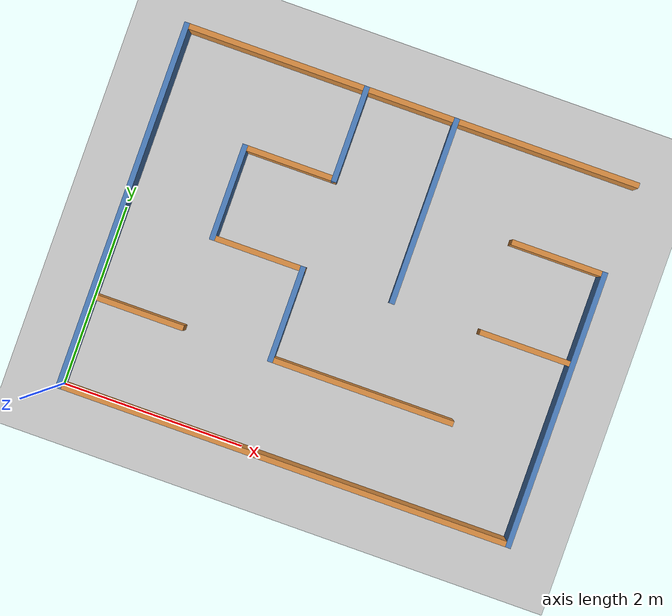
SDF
<?xml version="1.0"?>
<sdf version="1.8">
  <world name="default">
    <physics type="ode">
      <real_time_update_rate>1000.0</real_time_update_rate>
      <max_step_size>0.001</max_step_size>
      <real_time_factor>1</real_time_factor>
      <ode>
        <solver>
          <type>quick</type>
          <iters>150</iters>
          <precon_iters>0</precon_iters>
          <sor>1.400000</sor>
          <use_dynamic_moi_rescaling>1</use_dynamic_moi_rescaling>
        </solver>
        <constraints>
          <cfm>0.00001</cfm>
          <erp>0.2</erp>
          <contact_max_correcting_vel>2000.000000</contact_max_correcting_vel>
          <contact_surface_layer>0.01000</contact_surface_layer>
        </constraints>
      </ode>
    </physics>
    <plugin
      filename="gz-sim-physics-system"
      name="gz::sim::systems::Physics">
    </plugin>
    <plugin
      filename="gz-sim-user-commands-system"
      name="gz::sim::systems::UserCommands">
    </plugin>
    <plugin
      filename="gz-sim-scene-broadcaster-system"
      name="gz::sim::systems::SceneBroadcaster">
    </plugin>
    <plugin
      filename="gz-sim-sensors-system"
      name="gz::sim::systems::Sensors">
      <render_engine>ogre2</render_engine>
    </plugin>
    <plugin
      filename="gz-sim-imu-system"
      name="gz::sim::systems::Imu">
    </plugin>

    <scene>
      <shadows>false</shadows>
    </scene>

    <gui fullscreen='0'>
      <camera name='user_camera'>
        <pose frame=''>2.07 2.00 7.5 0 1.5138 0</pose>
        <view_controller>orbit</view_controller>
        <projection_type>perspective</projection_type>
      </camera>
    </gui>

    <light type="directional" name="sun">
      <cast_shadows>false</cast_shadows>
      <pose>0 0 10 0 0 0</pose>
      <diffuse>0.8 0.8 0.8 1</diffuse>
      <specular>0.2 0.2 0.2 1</specular>
      <attenuation>
        <range>1000</range>
        <constant>0.9</constant>
        <linear>0.01</linear>
        <quadratic>0.001</quadratic>
      </attenuation>
      <direction>-0.5 0.1 -0.9</direction>
    </light>

    <model name="ground_plane">
      <static>true</static>
      <link name="link">
        <collision name="collision">
          <geometry>
            <plane>
              <normal>0 0 1</normal>
              <size>100 100</size>
            </plane>
          </geometry>
          <surface>
            <friction>
              <ode>
                <mu>100</mu>
                <mu2>50</mu2>
              </ode>
            </friction>
          </surface>
        </collision>
        <visual name="visual">
          <geometry>
            <plane>
              <normal>0 0 1</normal>
              <size>100 100</size>
            </plane>
          </geometry>
          <material>
            <ambient>0.8 0.8 0.8 1</ambient>
            <diffuse>0.8 0.8 0.8 1</diffuse>
            <specular>0.8 0.8 0.8 1</specular>
          </material>
        </visual>
      </link>
    </model>

    <model name="maze">
      <static>true</static>
      <link name="walls">
        <collision name="wall_0_collision">
          <pose>0.000 2.000 0.150 0 0 0</pose>
          <geometry>
            <box>
              <size>0.060 4.060 0.300</size>
            </box>
          </geometry>
        </collision>
        <visual name="wall_0_visual">
          <pose>0.000 2.000 0.150 0 0 0</pose>
          <geometry>
            <box>
              <size>0.060 4.060 0.300</size>
            </box>
          </geometry>
          <material>
            <ambient>0.30 0.50 0.75 1</ambient>
            <diffuse>0.30 0.50 0.75 1</diffuse>
            <specular>0.1 0.1 0.1 1</specular>
          </material>
        </visual>
        <collision name="wall_1_collision">
          <pose>1.000 2.500 0.150 0 0 0</pose>
          <geometry>
            <box>
              <size>0.060 1.060 0.300</size>
            </box>
          </geometry>
        </collision>
        <visual name="wall_1_visual">
          <pose>1.000 2.500 0.150 0 0 0</pose>
          <geometry>
            <box>
              <size>0.060 1.060 0.300</size>
            </box>
          </geometry>
          <material>
            <ambient>0.30 0.50 0.75 1</ambient>
            <diffuse>0.30 0.50 0.75 1</diffuse>
            <specular>0.1 0.1 0.1 1</specular>
          </material>
        </visual>
        <collision name="wall_2_collision">
          <pose>2.000 1.500 0.150 0 0 0</pose>
          <geometry>
            <box>
              <size>0.060 1.060 0.300</size>
            </box>
          </geometry>
        </collision>
        <visual name="wall_2_visual">
          <pose>2.000 1.500 0.150 0 0 0</pose>
          <geometry>
            <box>
              <size>0.060 1.060 0.300</size>
            </box>
          </geometry>
          <material>
            <ambient>0.30 0.50 0.75 1</ambient>
            <diffuse>0.30 0.50 0.75 1</diffuse>
            <specular>0.1 0.1 0.1 1</specular>
          </material>
        </visual>
        <collision name="wall_3_collision">
          <pose>2.000 3.500 0.150 0 0 0</pose>
          <geometry>
            <box>
              <size>0.060 1.060 0.300</size>
            </box>
          </geometry>
        </collision>
        <visual name="wall_3_visual">
          <pose>2.000 3.500 0.150 0 0 0</pose>
          <geometry>
            <box>
              <size>0.060 1.060 0.300</size>
            </box>
          </geometry>
          <material>
            <ambient>0.30 0.50 0.75 1</ambient>
            <diffuse>0.30 0.50 0.75 1</diffuse>
            <specular>0.1 0.1 0.1 1</specular>
          </material>
        </visual>
        <collision name="wall_4_collision">
          <pose>3.000 3.000 0.150 0 0 0</pose>
          <geometry>
            <box>
              <size>0.060 2.060 0.300</size>
            </box>
          </geometry>
        </collision>
        <visual name="wall_4_visual">
          <pose>3.000 3.000 0.150 0 0 0</pose>
          <geometry>
            <box>
              <size>0.060 2.060 0.300</size>
            </box>
          </geometry>
          <material>
            <ambient>0.30 0.50 0.75 1</ambient>
            <diffuse>0.30 0.50 0.75 1</diffuse>
            <specular>0.1 0.1 0.1 1</specular>
          </material>
        </visual>
        <collision name="wall_5_collision">
          <pose>5.000 1.500 0.150 0 0 0</pose>
          <geometry>
            <box>
              <size>0.060 3.060 0.300</size>
            </box>
          </geometry>
        </collision>
        <visual name="wall_5_visual">
          <pose>5.000 1.500 0.150 0 0 0</pose>
          <geometry>
            <box>
              <size>0.060 3.060 0.300</size>
            </box>
          </geometry>
          <material>
            <ambient>0.30 0.50 0.75 1</ambient>
            <diffuse>0.30 0.50 0.75 1</diffuse>
            <specular>0.1 0.1 0.1 1</specular>
          </material>
        </visual>
        <collision name="wall_6_collision">
          <pose>2.500 0.000 0.150 0 0 0</pose>
          <geometry>
            <box>
              <size>5.060 0.060 0.300</size>
            </box>
          </geometry>
        </collision>
        <visual name="wall_6_visual">
          <pose>2.500 0.000 0.150 0 0 0</pose>
          <geometry>
            <box>
              <size>5.060 0.060 0.300</size>
            </box>
          </geometry>
          <material>
            <ambient>0.85 0.55 0.25 1</ambient>
            <diffuse>0.85 0.55 0.25 1</diffuse>
            <specular>0.1 0.1 0.1 1</specular>
          </material>
        </visual>
        <collision name="wall_7_collision">
          <pose>0.500 1.000 0.150 0 0 0</pose>
          <geometry>
            <box>
              <size>1.060 0.060 0.300</size>
            </box>
          </geometry>
        </collision>
        <visual name="wall_7_visual">
          <pose>0.500 1.000 0.150 0 0 0</pose>
          <geometry>
            <box>
              <size>1.060 0.060 0.300</size>
            </box>
          </geometry>
          <material>
            <ambient>0.85 0.55 0.25 1</ambient>
            <diffuse>0.85 0.55 0.25 1</diffuse>
            <specular>0.1 0.1 0.1 1</specular>
          </material>
        </visual>
        <collision name="wall_8_collision">
          <pose>3.000 1.000 0.150 0 0 0</pose>
          <geometry>
            <box>
              <size>2.060 0.060 0.300</size>
            </box>
          </geometry>
        </collision>
        <visual name="wall_8_visual">
          <pose>3.000 1.000 0.150 0 0 0</pose>
          <geometry>
            <box>
              <size>2.060 0.060 0.300</size>
            </box>
          </geometry>
          <material>
            <ambient>0.85 0.55 0.25 1</ambient>
            <diffuse>0.85 0.55 0.25 1</diffuse>
            <specular>0.1 0.1 0.1 1</specular>
          </material>
        </visual>
        <collision name="wall_9_collision">
          <pose>1.500 2.000 0.150 0 0 0</pose>
          <geometry>
            <box>
              <size>1.060 0.060 0.300</size>
            </box>
          </geometry>
        </collision>
        <visual name="wall_9_visual">
          <pose>1.500 2.000 0.150 0 0 0</pose>
          <geometry>
            <box>
              <size>1.060 0.060 0.300</size>
            </box>
          </geometry>
          <material>
            <ambient>0.85 0.55 0.25 1</ambient>
            <diffuse>0.85 0.55 0.25 1</diffuse>
            <specular>0.1 0.1 0.1 1</specular>
          </material>
        </visual>
        <collision name="wall_10_collision">
          <pose>4.500 2.000 0.150 0 0 0</pose>
          <geometry>
            <box>
              <size>1.060 0.060 0.300</size>
            </box>
          </geometry>
        </collision>
        <visual name="wall_10_visual">
          <pose>4.500 2.000 0.150 0 0 0</pose>
          <geometry>
            <box>
              <size>1.060 0.060 0.300</size>
            </box>
          </geometry>
          <material>
            <ambient>0.85 0.55 0.25 1</ambient>
            <diffuse>0.85 0.55 0.25 1</diffuse>
            <specular>0.1 0.1 0.1 1</specular>
          </material>
        </visual>
        <collision name="wall_11_collision">
          <pose>1.500 3.000 0.150 0 0 0</pose>
          <geometry>
            <box>
              <size>1.060 0.060 0.300</size>
            </box>
          </geometry>
        </collision>
        <visual name="wall_11_visual">
          <pose>1.500 3.000 0.150 0 0 0</pose>
          <geometry>
            <box>
              <size>1.060 0.060 0.300</size>
            </box>
          </geometry>
          <material>
            <ambient>0.85 0.55 0.25 1</ambient>
            <diffuse>0.85 0.55 0.25 1</diffuse>
            <specular>0.1 0.1 0.1 1</specular>
          </material>
        </visual>
        <collision name="wall_12_collision">
          <pose>4.500 3.000 0.150 0 0 0</pose>
          <geometry>
            <box>
              <size>1.060 0.060 0.300</size>
            </box>
          </geometry>
        </collision>
        <visual name="wall_12_visual">
          <pose>4.500 3.000 0.150 0 0 0</pose>
          <geometry>
            <box>
              <size>1.060 0.060 0.300</size>
            </box>
          </geometry>
          <material>
            <ambient>0.85 0.55 0.25 1</ambient>
            <diffuse>0.85 0.55 0.25 1</diffuse>
            <specular>0.1 0.1 0.1 1</specular>
          </material>
        </visual>
        <collision name="wall_13_collision">
          <pose>2.500 4.000 0.150 0 0 0</pose>
          <geometry>
            <box>
              <size>5.060 0.060 0.300</size>
            </box>
          </geometry>
        </collision>
        <visual name="wall_13_visual">
          <pose>2.500 4.000 0.150 0 0 0</pose>
          <geometry>
            <box>
              <size>5.060 0.060 0.300</size>
            </box>
          </geometry>
          <material>
            <ambient>0.85 0.55 0.25 1</ambient>
            <diffuse>0.85 0.55 0.25 1</diffuse>
            <specular>0.1 0.1 0.1 1</specular>
          </material>
        </visual>
      </link>
    </model>
  </world>
</sdf>
